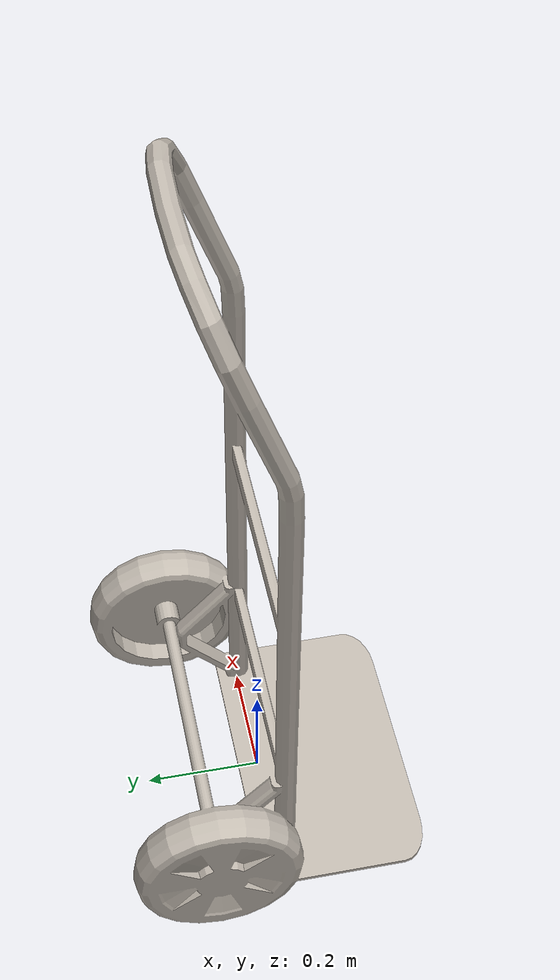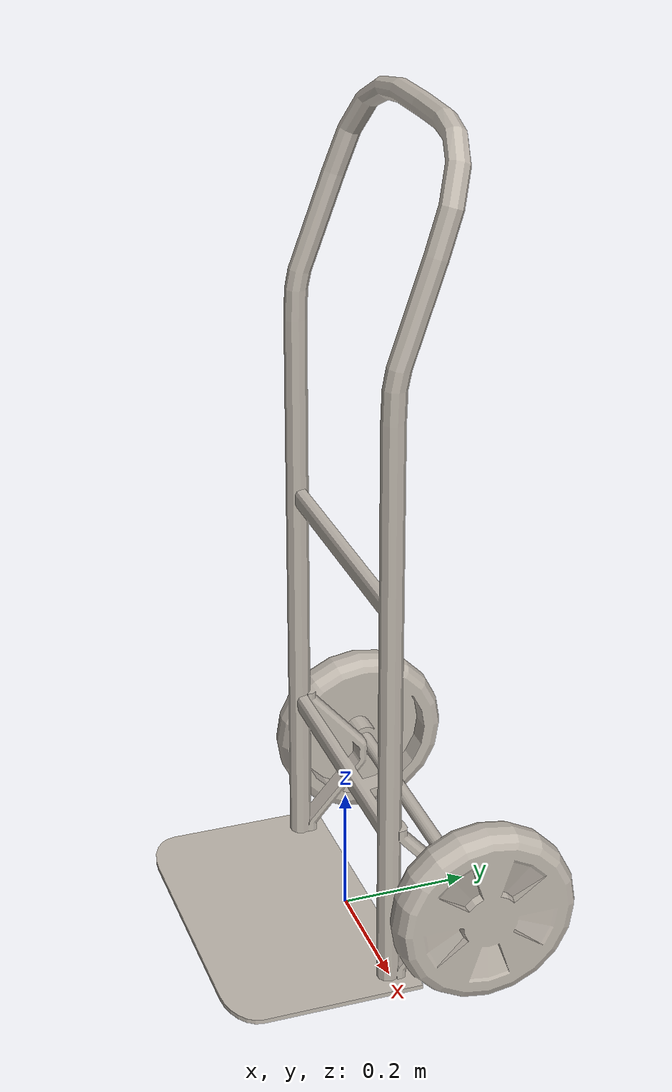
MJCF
<mujoco model="material_cart_orange">
  <compiler angle="radian" autolimits="true"/>
  <option gravity="0 0 -9.81"/>
  <default>
    <default class="wheel">
      <joint type="hinge" axis="1 0 0" damping="0.05" frictionloss="0.02" armature="0.01"/>
      <geom type="cylinder" size="0.125 0.035" quat="0.707107 0 0.707107 0" density="300" group="3" rgba="0 0 0 0" condim="3" friction="1.2 0.005 0.001" solref="0.02 1" solimp="0.9 0.95 0.001"/>
    </default>
  </default>
  <asset>
    <texture name="texture_0" type="2d" file="assets/orange/textures/texture_0.png"/>
    <material name="material_0_lambert1" rgba="1 1 1 1" metallic="1" roughness="1" texture="texture_0"/>
    <mesh name="visual_0" file="assets/orange/meshes/visual_0.obj" inertia="shell"/>
  </asset>
  <worldbody>
    <body name="material_cart_orange">
      <joint name="material_cart_orange_free" type="free" damping="0.05"/>
      <geom name="visual_0" type="mesh" mesh="visual_0" material="material_0_lambert1" group="0" contype="0" conaffinity="0" density="0"/>
      <!-- Upright frame stays clear of the floor. The toe plate parks the truck until it is tipped onto the wheels. -->
      <geom name="frame" type="box" pos="0 0.04 0.76" size="0.22 0.16 0.52" group="3" rgba="0 0 0 0" density="80"/>
      <geom name="toe" type="box" pos="0 -0.235 0.008" size="0.16 0.03 0.008" group="3" rgba="0 0 0 0" density="200" friction="0.6 0.005 0.001"/>
      <body name="wheel_l" pos="-0.238 0.05 0.125">
        <joint name="wheel_l" class="wheel"/>
        <geom name="wheel_l" class="wheel"/>
      </body>
      <body name="wheel_r" pos="0.238 0.05 0.125">
        <joint name="wheel_r" class="wheel"/>
        <geom name="wheel_r" class="wheel"/>
      </body>
    </body>
  </worldbody>
  <contact>
    <exclude body1="material_cart_orange" body2="wheel_l"/>
    <exclude body1="material_cart_orange" body2="wheel_r"/>
  </contact>
</mujoco>
